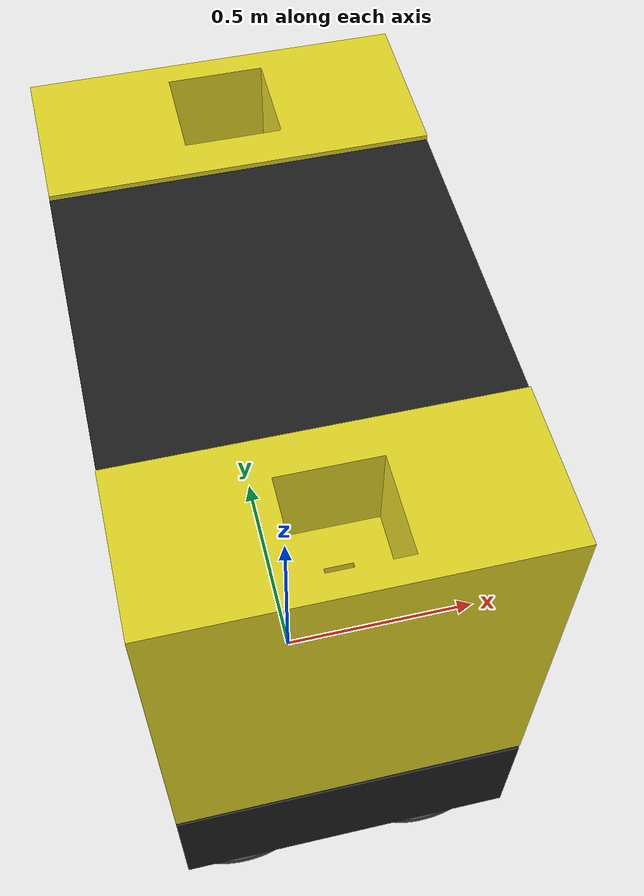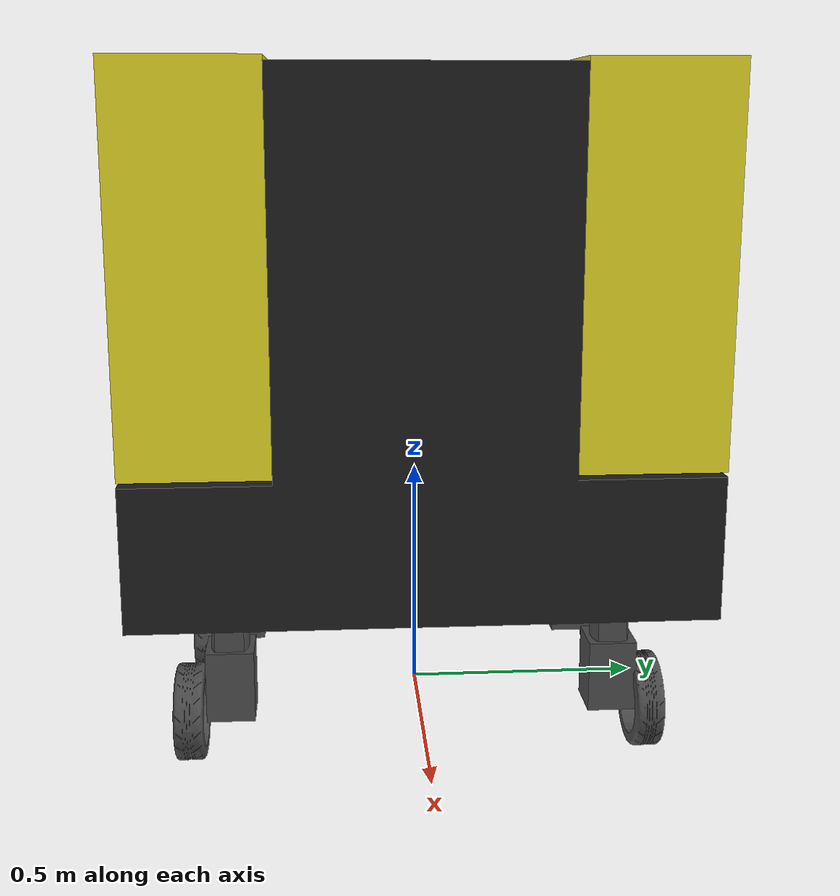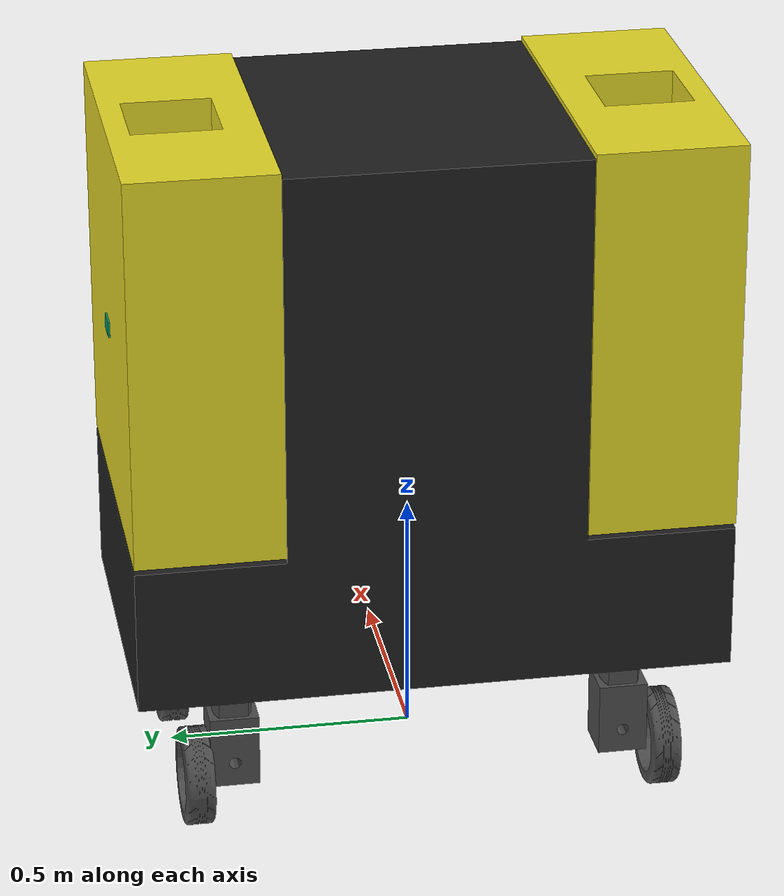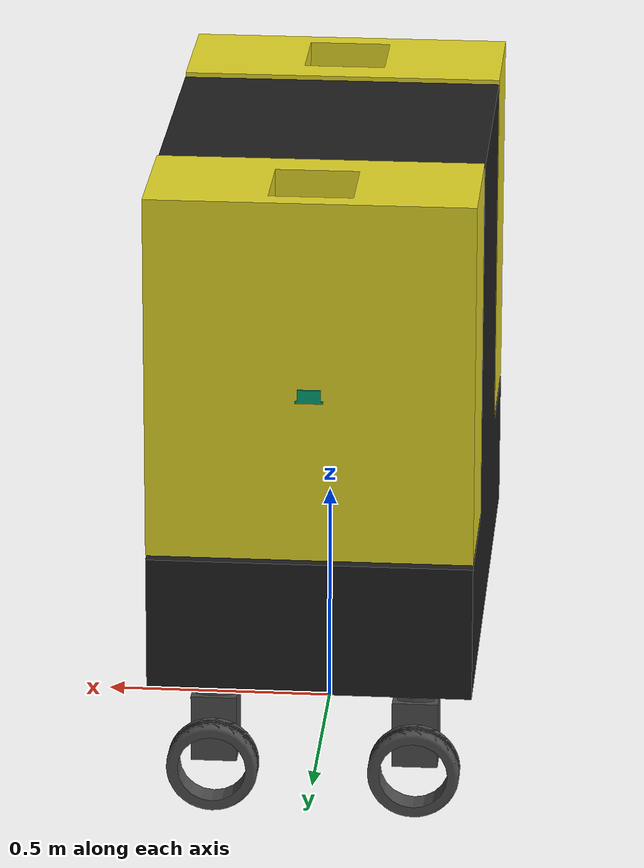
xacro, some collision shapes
<?xml version="1.0" ?>
<robot name="turtlebot3_waffle" xmlns:xacro="http://ros.org/wiki/xacro">
  <xacro:include filename="$(find covid_robot_description)/urdf/covid_robot.gazebo.xacro"/>

  <xacro:property name="r200_cam_rgb_px" value="0.005"/>
  <xacro:property name="r200_cam_rgb_py" value="0.018"/>
  <xacro:property name="r200_cam_rgb_pz" value="0.013"/>
  <xacro:property name="r200_cam_depth_offset" value="0.01"/>

  <link name="base_footprint"/>

  <joint name="base_joint" type="fixed">
    <parent link="base_footprint"/>
    <child link="base_link" />
    <origin xyz="0 0 0.010" rpy="0 0 -1.57"/>
  </joint>

  <link name="base_link">
    <visual>
      <origin xyz="0.0 0 0.25" rpy="0 0 0.0"/>
      <geometry>
        <mesh filename="package://covid_robot_description/meshes/bases/covid_robot_body.stl" scale="0.001 0.001 0.001"/>
      </geometry>
      <material name="black"/>
    </visual>

    <collision>
      <origin xyz="0 0 0.047" rpy="0 0 0"/>
      <geometry>
        <box size="0.266 0.266 0.094"/>
      </geometry>
    </collision>
  </link>

  <joint name="wheel_right_joint_1_steer" type="fixed">
    <parent link="base_link"/>
    <child link="wheel_right_link_1_steer"/>
    <!-- if error => z = -0.03 -->
    <origin xyz="-0.4 0.22 -0.08" rpy="0 0 0"/>
  </joint>

  <link name="wheel_right_link_1_steer">
    <visual>
      <origin xyz="0 0 0.1" rpy="1.57 0 0"/>
      <geometry>
        <mesh filename="package://covid_robot_description/meshes/wheels/steering_motor.stl" scale="0.001 0.001 0.001"/>
      </geometry>
      <material name="dark"/>
    </visual>

    <collision>
      <origin xyz="0 0 0" rpy="0 0 0"/>
    </collision>
  </link>

  <joint name="wheel_right_joint_1" type="continuous">
    <parent link="base_link"/>
    <child link="wheel_right_link_1"/>
    <origin xyz="-0.48 0.22 0.023" rpy="0 -1.57 0"/>
    <axis xyz="0 0 1"/>
  </joint>

  <link name="wheel_right_link_1">
    <visual>
      <origin xyz="0.0 0 0.02" rpy="1.57 0 0"/>
      <geometry>
        <mesh filename="package://covid_robot_description/meshes/wheels/covid_robot_tire.stl" scale="0.001 0.001 0.001"/>
      </geometry>
      <material name="dark"/>
    </visual>

    <collision>
      <origin xyz="0 0 0" rpy="0 0 0"/>
      <geometry>
        <cylinder length="0.018" radius="0.1"/>
      </geometry>
    </collision>

    <inertial>
      <origin xyz="0 0 0" />
      <mass value="2.8498940e-02" />
      <inertia ixx="1.1175580e-05" ixy="-4.2369783e-11" ixz="-5.9381719e-09"
               iyy="1.1192413e-05" iyz="-1.4400107e-11"
               izz="2.0712558e-05" />
    </inertial>
  </link>

  <joint name="wheel_left_joint_1_steer" type="fixed">
    <parent link="base_link"/>
    <child link="wheel_left_link_1_steer"/>
    <origin xyz="0.40 0.22 -0.08" rpy="0 0 0"/>
  </joint>

  <link name="wheel_left_link_1_steer">
      <visual>
      <origin xyz="0 0 0.1" rpy="1.57 0 0"/>
      <geometry>
        <mesh filename="package://covid_robot_description/meshes/wheels/steering_motor.stl" scale="0.001 0.001 0.001"/>
      </geometry>
      <material name="dark"/>
    </visual>

    <collision>
      <origin xyz="0 0 0" rpy="0 0 0"/>
    </collision>

  </link>

  <joint name="wheel_left_joint_1" type="continuous">
    <parent link="base_link"/>
    <child link="wheel_left_link_1"/>
    <origin xyz="0.48 0.22 0.023" rpy="0 -1.57 0"/>
    <axis xyz="0 0 1"/>
  </joint>

  <link name="wheel_left_link_1">
    <visual>
      <origin xyz="0 0 0.02" rpy="1.57 0 0"/>
      <geometry>
        <mesh filename="package://covid_robot_description/meshes/wheels/covid_robot_tire.stl" scale="0.001 0.001 0.001"/>
      </geometry>
      <material name="dark"/>
    </visual>

    <collision>
      <origin xyz="0 0 0" rpy="0 0 0"/>
      <geometry>
        <cylinder length="0.018" radius="0.1"/>
      </geometry>
    </collision>

    <inertial>
      <origin xyz="0 0 0" />
      <mass value="2.8498940e-02" />
      <inertia ixx="1.1175580e-05" ixy="-4.2369783e-11" ixz="-5.9381719e-09"
               iyy="1.1192413e-05" iyz="-1.4400107e-11"
               izz="2.0712558e-05" />
      </inertial>
  </link>

  <joint name="wheel_left_joint_steer" type="fixed">
    <parent link="base_link"/>
    <child link="wheel_left_link_steer"/>
    <origin xyz="0.40 -0.22 -0.08" rpy="0 0 0"/>
  </joint>

  <link name="wheel_left_link_steer">
    <visual>
      <origin xyz="0 0 0.1" rpy="1.57 0 0"/>
      <geometry>
        <mesh filename="package://covid_robot_description/meshes/wheels/steering_motor.stl" scale="0.001 0.001 0.001"/>
      </geometry>
      <material name="dark"/>
    </visual>

    <collision>
      <origin xyz="0 0 0" rpy="0 0 0"/>
    </collision>
  </link>

  <joint name="wheel_left_joint" type="continuous">
    <parent link="base_link"/>
    <child link="wheel_left_link"/>
    <origin xyz="0.48 -0.22 0.023" rpy="0 -1.57 0"/>
    <axis xyz="0 0 1"/>
  </joint>

  <link name="wheel_left_link">
    <visual>
      <origin xyz="0.0 0 0.02" rpy="1.57 0 0"/>
      <geometry>
        <mesh filename="package://covid_robot_description/meshes/wheels/covid_robot_tire.stl" scale="0.001 0.001 0.001"/>
      </geometry>
      <material name="dark"/>
    </visual>

    <collision>
      <origin xyz="0 0 0" rpy="0 0 0"/>
      <geometry>
        <cylinder length="0.018" radius="0.1"/>
      </geometry>
    </collision>

    <inertial>
      <origin xyz="0 0 0" />
      <mass value="2.8498940e-02" />
      <inertia ixx="1.1175580e-05" ixy="-4.2369783e-11" ixz="-5.9381719e-09"
               iyy="1.1192413e-05" iyz="-1.4400107e-11"
               izz="2.0712558e-05" />
      </inertial>
  </link>

  <joint name="wheel_right_joint_steer" type="fixed">
    <parent link="base_link"/>
    <child link="wheel_right_link_steer"/>
    <origin xyz="-0.40 -0.22 -0.08" rpy="0 0 0"/>
  </joint>

  <link name="wheel_right_link_steer">
    <visual>
      <origin xyz="0 0 0.1" rpy="1.57 0 0"/>
      <geometry>
        <mesh filename="package://covid_robot_description/meshes/wheels/steering_motor.stl" scale="0.001 0.001 0.001"/>
      </geometry>
      <material name="dark"/>
    </visual>

    <collision>
      <origin xyz="0 0 0" rpy="0 0 0"/>
    </collision>

  </link>

  <joint name="wheel_right_joint" type="continuous">
    <parent link="base_link"/>
    <child link="wheel_right_link"/>
    <origin xyz="-0.48 -0.22 0.023" rpy="0 -1.57 0"/>
    <axis xyz="0 0 1"/>
  </joint>

  <link name="wheel_right_link">
    <visual>
      <origin xyz="0 0 0.02" rpy="1.57 0 0"/>
      <geometry>
        <mesh filename="package://covid_robot_description/meshes/wheels/covid_robot_tire.stl" scale="0.001 0.001 0.001"/>
      </geometry>
    </visual>

    <collision>
      <origin xyz="0 0 0" rpy="0 0 0"/>
      <geometry>
        <cylinder length="0.018" radius="0.1"/>
      </geometry>
    </collision>

    <inertial>
      <origin xyz="0 0 0" />
      <mass value="2.8498940e-02" />
      <inertia ixx="1.1175580e-05" ixy="-4.2369783e-11" ixz="-5.9381719e-09"
               iyy="1.1192413e-05" iyz="-1.4400107e-11"
               izz="2.0712558e-05" />
      </inertial>
  </link>

  <joint name="body_side_left_rack" type="fixed">
    <parent link="base_link"/>
    <child link="body_side_left_rack"/>
    <!-- x = -0.45 when opened -->
    <origin xyz="-0.45 0.0 0.9" rpy="0 0 0"/>
  </joint>

  <link name="body_side_left_rack">
    <visual>
      <origin xyz="0.0 0.0 0.0" rpy="0 -1.65 0"/>
      <geometry>
        <mesh filename="package://covid_robot_description/meshes/bases/body_side_rack.stl" scale="0.001 0.001 0.001"/>
      </geometry>
      <material name="dark"/>
    </visual>

    <collision>
      <origin xyz="0 0 0" rpy="0 0 0"/>
    </collision>
  </link>

  <joint name="body_side_right_rack" type="fixed">
    <parent link="base_link"/>
    <child link="body_side_right_rack"/>
    <!-- x = 0.45 when opened -->
    <origin xyz="0.45 0.0 0.9" rpy="0 0 0"/>
  </joint>

  <link name="body_side_right_rack">
    <visual>
      <origin xyz="0.0 0.0 0.0" rpy="0 -1.65 0"/>
      <geometry>
        <mesh filename="package://covid_robot_description/meshes/bases/body_side_rack.stl" scale="0.001 0.001 0.001"/>
      </geometry>
      <material name="dark"/>
    </visual>

    <collision>
      <origin xyz="0 0 0" rpy="0 0 0"/>
    </collision>
  </link>

  <joint name="body_side_left" type="fixed">
    <parent link="base_link"/>
    <child link="body_side_left"/>
    <!-- x = -0.45 when closed -->
    <!-- x = -0.75 when opened -->
    <origin xyz="-0.45 0.0 0.460" rpy="0 0 0"/>
  </joint>

  <link name="body_side_left">
    <visual>
      <origin xyz="0.0 0.0 0.1" rpy="1.57 0 0"/>
      <geometry>
        <mesh filename="package://covid_robot_description/meshes/bases/body_side.stl" scale="0.001 0.001 0.001"/>
      </geometry>
      <material name="dark"/>
    </visual>

    <collision>
      <origin xyz="0 0 0" rpy="0 0 0"/>
    </collision>
  </link>

  <joint name="body_side_right" type="fixed">
    <parent link="base_link"/>
    <child link="body_side_right"/>
    <!-- x = 0.45 when closed -->
    <!-- x = 0.75 when opened -->
    <origin xyz="0.45 0.0 0.460" rpy="0 0 0"/>
  </joint>

  <link name="body_side_right">
    <visual>
      <origin xyz="0.0 0.0 0.1" rpy="1.57 0 -3.14"/>
      <geometry>
        <mesh filename="package://covid_robot_description/meshes/bases/body_side.stl" scale="0.001 0.001 0.001"/>
      </geometry>
    </visual>

    <collision>
      <origin xyz="0 0 0" rpy="0 0 0"/>
    </collision>
  </link>

  <joint name="imu_joint" type="fixed">
    <parent link="base_link"/>
    <child link="imu_link"/>
    <origin xyz="0.0 0 0.068" rpy="0 0 0"/>
  </joint>

  <link name="imu_link"/>

  <joint name="scan_joint" type="fixed">
    <parent link="base_link"/>
    <child link="base_scan"/>
    <origin xyz="0.0 0 0.2" rpy="0 0 1.57"/>
  </joint>

  <link name="base_scan">
    <visual>
      <origin xyz="0 0 0" rpy="0 0 0"/>
      <geometry>
        <mesh filename="package://turtlebot3_description/meshes/sensors/lds.stl" scale="0.001 0.001 0.001"/>
      </geometry>
      <material name="dark"/>
    </visual>

    <collision>
      <origin xyz="0.015 0 -0.0065" rpy="0 0 0"/>
      <geometry>
        <cylinder length="0.0315" radius="0.055"/>
      </geometry>
    </collision>

    <inertial>
      <mass value="0.114" />
      <origin xyz="0 0 0" />
      <inertia ixx="0.001" ixy="0.0" ixz="0.0"
               iyy="0.001" iyz="0.0"
               izz="0.001" />
    </inertial>
  </link>

  <joint name="camera_joint" type="fixed">
    <origin xyz="0.0 0.8 0.8" rpy="0 0 1.57"/>
    <parent link="base_link"/>
    <child link="camera_link"/>
  </joint>

  <link name="camera_link">
    <collision>
      <origin xyz="0.005 0.0 0.5" rpy="0 0 0"/>
      <geometry>
        <box size="0.015 0.030 0.027"/>
      </geometry>
    </collision>
  </link>

  <joint name="camera_rgb_joint" type="fixed">
    <origin xyz="1.0 0.0 0.0" rpy="0 0 0"/>
    <parent link="camera_link"/>
    <child link="camera_rgb_frame"/>
  </joint>
  <link name="camera_rgb_frame"/>

  <joint name="camera_rgb_optical_joint" type="fixed">
    <origin xyz="0 0 0" rpy="-1.57 0 -1.57"/>
    <parent link="camera_rgb_frame"/>
    <child link="camera_rgb_optical_frame"/>
  </joint>
  <link name="camera_rgb_optical_frame"/>
</robot>
